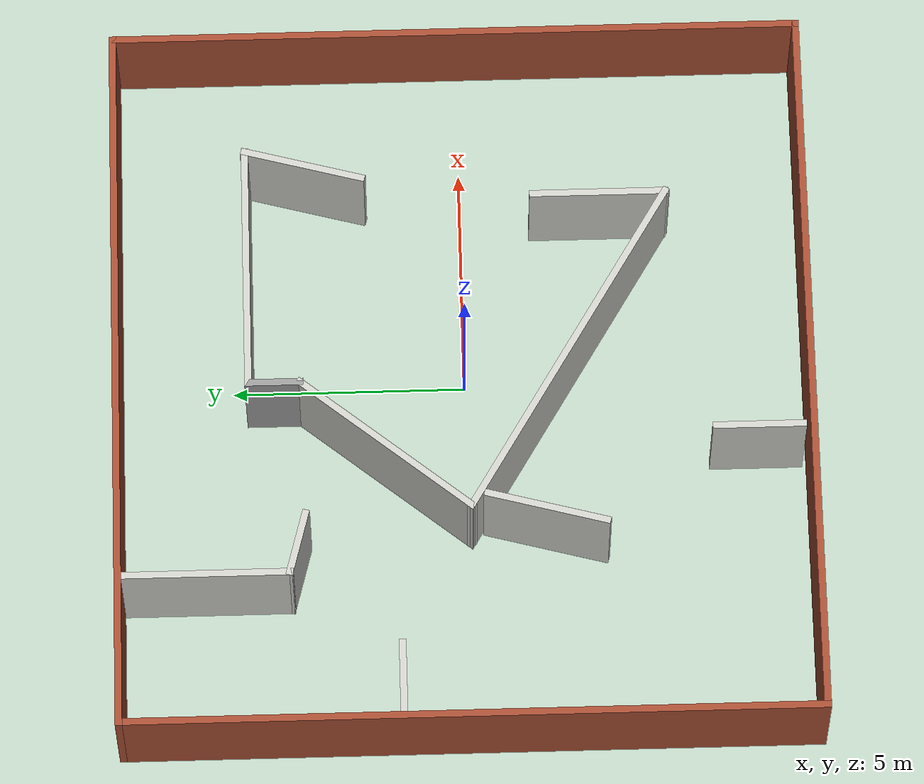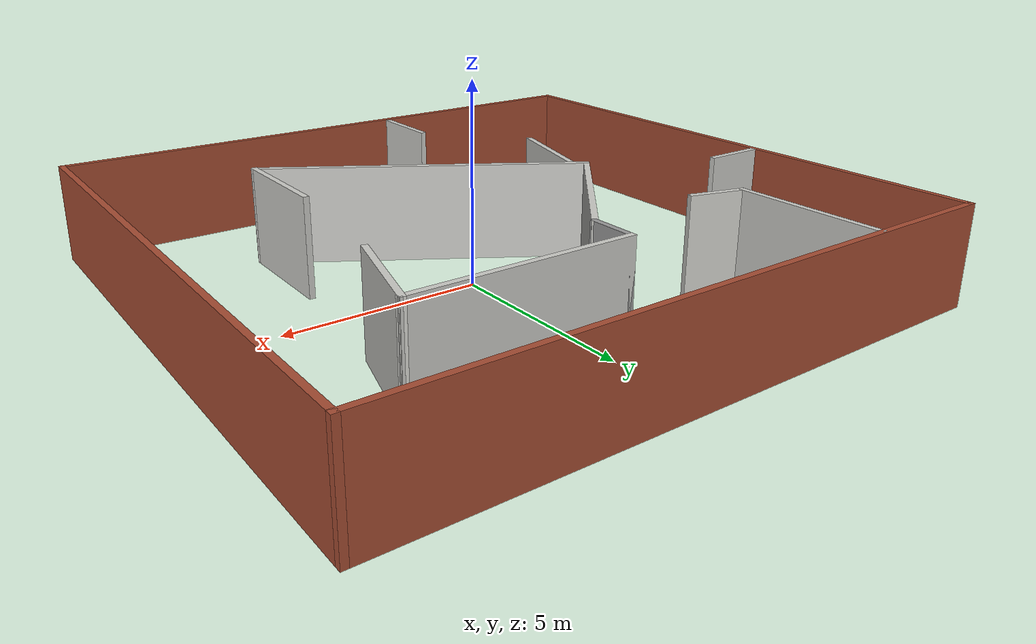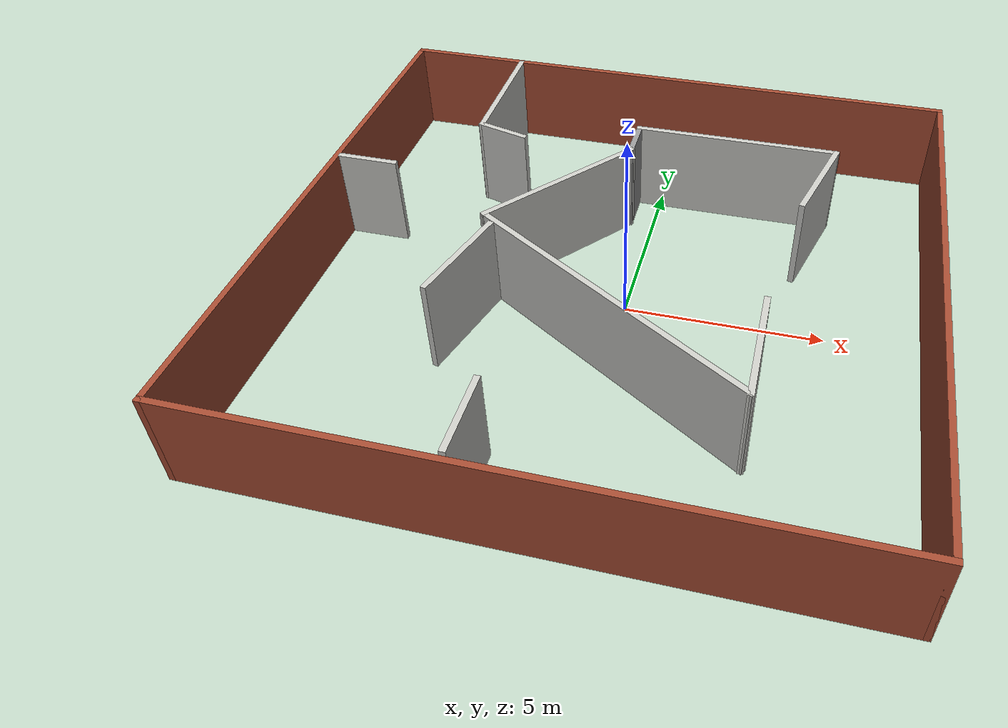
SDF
<?xml version='1.0'?>
<sdf version='1.7'>
  <model name='newwalls'>
    <pose>-0.401309 0.036613 0 0 -0 0</pose>
    <link name='Wall_10'>
      <collision name='Wall_10_Collision'>
        <geometry>
          <box>
            <size>15.75 0.15 2.5</size>
          </box>
        </geometry>
        <pose>0 0 1.25 0 -0 0</pose>
      </collision>
      <visual name='Wall_10_Visual'>
        <pose>0 0 1.25 0 -0 0</pose>
        <geometry>
          <box>
            <size>15.75 0.15 2.5</size>
          </box>
        </geometry>
        <material>
          <script>
            <uri>file://media/materials/scripts/gazebo.material</uri>
            <name>Gazebo/Bricks</name>
          </script>
          <ambient>1 1 1 1</ambient>
        </material>
        <meta>
          <layer>0</layer>
        </meta>
      </visual>
      <pose>-0 7.425 0 0 -0 3.14159</pose>
    </link>
    <link name='Wall_13'>
      <collision name='Wall_13_Collision'>
        <geometry>
          <box>
            <size>3.75 0.15 2.5</size>
          </box>
        </geometry>
        <pose>0 0 1.25 0 -0 0</pose>
      </collision>
      <visual name='Wall_13_Visual'>
        <pose>0 0 1.25 0 -0 0</pose>
        <geometry>
          <box>
            <size>3.75 0.15 2.5</size>
          </box>
        </geometry>
        <material>
          <script>
            <uri>file://media/materials/scripts/gazebo.material</uri>
            <name>Gazebo/CeilingTiled</name>
          </script>
          <ambient>1 1 1 1</ambient>
        </material>
        <meta>
          <layer>0</layer>
        </meta>
      </visual>
      <pose>-4.5564 5.58277 0 0 -0 -1.5708</pose>
    </link>
    <link name='Wall_15'>
      <collision name='Wall_15_Collision'>
        <geometry>
          <box>
            <size>1.5 0.15 2.5</size>
          </box>
        </geometry>
        <pose>0 0 1.25 0 -0 0</pose>
      </collision>
      <visual name='Wall_15_Visual'>
        <pose>0 0 1.25 0 -0 0</pose>
        <geometry>
          <box>
            <size>1.5 0.15 2.5</size>
          </box>
        </geometry>
        <material>
          <script>
            <uri>file://media/materials/scripts/gazebo.material</uri>
            <name>Gazebo/CeilingTiled</name>
          </script>
          <ambient>1 1 1 1</ambient>
        </material>
        <meta>
          <layer>0</layer>
        </meta>
      </visual>
      <pose>-3.9044 3.60807 0 0 -0 -0.261799</pose>
    </link>
    <link name='Wall_19'>
      <collision name='Wall_19_Collision'>
        <geometry>
          <box>
            <size>1.25 0.15 2.5</size>
          </box>
        </geometry>
        <pose>0 0 1.25 0 -0 0</pose>
      </collision>
      <visual name='Wall_19_Visual'>
        <pose>0 0 1.25 0 -0 0</pose>
        <geometry>
          <box>
            <size>1.25 0.15 2.5</size>
          </box>
        </geometry>
        <material>
          <script>
            <uri>file://media/materials/scripts/gazebo.material</uri>
            <name>Gazebo/Grey</name>
          </script>
          <ambient>1 1 1 1</ambient>
        </material>
        <meta>
          <layer>0</layer>
        </meta>
      </visual>
      <pose>-0.268113 4.04903 0 0 -0 1.5708</pose>
    </link>
    <link name='Wall_20'>
      <collision name='Wall_20_Collision'>
        <geometry>
          <box>
            <size>5.5 0.15 2.5</size>
          </box>
        </geometry>
        <pose>0 0 1.25 0 -0 0</pose>
      </collision>
      <visual name='Wall_20_Visual'>
        <pose>0 0 1.25 0 -0 0</pose>
        <geometry>
          <box>
            <size>5.5 0.15 2.5</size>
          </box>
        </geometry>
        <material>
          <script>
            <uri>file://media/materials/scripts/gazebo.material</uri>
            <name>Gazebo/CeilingTiled</name>
          </script>
          <ambient>1 1 1 1</ambient>
        </material>
        <meta>
          <layer>0</layer>
        </meta>
      </visual>
      <pose>2.40689 4.59903 0 0 -0 0</pose>
    </link>
    <link name='Wall_21'>
      <collision name='Wall_21_Collision'>
        <geometry>
          <box>
            <size>2.75 0.15 2.5</size>
          </box>
        </geometry>
        <pose>0 0 1.25 0 -0 0</pose>
      </collision>
      <visual name='Wall_21_Visual'>
        <pose>0 0 1.25 0 -0 0</pose>
        <geometry>
          <box>
            <size>2.75 0.15 2.5</size>
          </box>
        </geometry>
        <material>
          <script>
            <uri>file://media/materials/scripts/gazebo.material</uri>
            <name>Gazebo/CeilingTiled</name>
          </script>
          <ambient>1 1 1 1</ambient>
        </material>
        <meta>
          <layer>0</layer>
        </meta>
      </visual>
      <pose>4.74542 3.34333 0 0 -0 -1.8326</pose>
    </link>
    <link name='Wall_23'>
      <collision name='Wall_23_Collision'>
        <geometry>
          <box>
            <size>3 0.15 2.5</size>
          </box>
        </geometry>
        <pose>0 0 1.25 0 -0 0</pose>
      </collision>
      <visual name='Wall_23_Visual'>
        <pose>0 0 1.25 0 -0 0</pose>
        <geometry>
          <box>
            <size>3 0.15 2.5</size>
          </box>
        </geometry>
        <material>
          <script>
            <uri>file://media/materials/scripts/gazebo.material</uri>
            <name>Gazebo/CeilingTiled</name>
          </script>
          <ambient>1 1 1 1</ambient>
        </material>
        <meta>
          <layer>0</layer>
        </meta>
      </visual>
      <pose>3.93927 -3.02337 0 0 -0 -1.5708</pose>
    </link>
    <link name='Wall_26'>
      <collision name='Wall_26_Collision'>
        <geometry>
          <box>
            <size>4.76612 0.15 2.5</size>
          </box>
        </geometry>
        <pose>0 0 1.25 0 -0 0</pose>
      </collision>
      <visual name='Wall_26_Visual'>
        <pose>0 0 1.25 0 -0 0</pose>
        <geometry>
          <box>
            <size>4.76612 0.15 2.5</size>
          </box>
        </geometry>
        <material>
          <script>
            <uri>file://media/materials/scripts/gazebo.material</uri>
            <name>Gazebo/CeilingTiled</name>
          </script>
          <ambient>1 1 1 1</ambient>
        </material>
        <meta>
          <layer>0</layer>
        </meta>
      </visual>
      <pose>-1.71442 1.70033 0 0 -0 0.893569</pose>
    </link>
    <link name='Wall_28'>
      <collision name='Wall_28_Collision'>
        <geometry>
          <box>
            <size>8.47661 0.15 2.5</size>
          </box>
        </geometry>
        <pose>0 0 1.25 0 -0 0</pose>
      </collision>
      <visual name='Wall_28_Visual'>
        <pose>0 0 1.25 0 -0 0</pose>
        <geometry>
          <box>
            <size>8.47661 0.15 2.5</size>
          </box>
        </geometry>
        <material>
          <script>
            <uri>file://media/materials/scripts/gazebo.material</uri>
            <name>Gazebo/CeilingTiled</name>
          </script>
          <ambient>1 1 1 1</ambient>
        </material>
        <meta>
          <layer>0</layer>
        </meta>
      </visual>
      <pose>0.389267 -2.27337 0 0 -0 -0.549688</pose>
    </link>
    <link name='Wall_32'>
      <collision name='Wall_32_Collision'>
        <geometry>
          <box>
            <size>2 0.15 2.5</size>
          </box>
        </geometry>
        <pose>0 0 1.25 0 -0 0</pose>
      </collision>
      <visual name='Wall_32_Visual'>
        <pose>0 0 1.25 0 -0 0</pose>
        <geometry>
          <box>
            <size>2 0.15 2.5</size>
          </box>
        </geometry>
        <material>
          <script>
            <uri>file://media/materials/scripts/gazebo.material</uri>
            <name>Gazebo/CeilingTiled</name>
          </script>
          <ambient>1 1 1 1</ambient>
        </material>
        <meta>
          <layer>0</layer>
        </meta>
      </visual>
      <pose>-1.49879 -6.26553 0 0 -0 -1.5708</pose>
    </link>
    <link name='Wall_34'>
      <collision name='Wall_34_Collision'>
        <geometry>
          <box>
            <size>2.75 0.15 2.5</size>
          </box>
        </geometry>
        <pose>0 0 1.25 0 -0 0</pose>
      </collision>
      <visual name='Wall_34_Visual'>
        <pose>0 0 1.25 0 -0 0</pose>
        <geometry>
          <box>
            <size>2.75 0.15 2.5</size>
          </box>
        </geometry>
        <material>
          <script>
            <uri>file://media/materials/scripts/gazebo.material</uri>
            <name>Gazebo/CeilingTiled</name>
          </script>
          <ambient>1 1 1 1</ambient>
        </material>
        <meta>
          <layer>0</layer>
        </meta>
      </visual>
      <pose>-3.23446 -1.69902 0 0 -0 -1.8326</pose>
    </link>
    <link name='Wall_36'>
      <collision name='Wall_36_Collision'>
        <geometry>
          <box>
            <size>1.75 0.15 2.5</size>
          </box>
        </geometry>
        <pose>0 0 1.25 0 -0 0</pose>
      </collision>
      <visual name='Wall_36_Visual'>
        <pose>0 0 1.25 0 -0 0</pose>
        <geometry>
          <box>
            <size>1.75 0.15 2.5</size>
          </box>
        </geometry>
        <material>
          <script>
            <uri>file://media/materials/scripts/gazebo.material</uri>
            <name>Gazebo/CeilingTiled</name>
          </script>
          <ambient>1 1 1 1</ambient>
        </material>
        <meta>
          <layer>0</layer>
        </meta>
      </visual>
      <pose>-6.99521 1.44561 0 0 -0 0</pose>
    </link>
    <link name='Wall_5'>
      <collision name='Wall_5_Collision'>
        <geometry>
          <box>
            <size>15 0.15 2.5</size>
          </box>
        </geometry>
        <pose>0 0 1.25 0 -0 0</pose>
      </collision>
      <visual name='Wall_5_Visual'>
        <pose>0 0 1.25 0 -0 0</pose>
        <geometry>
          <box>
            <size>15 0.15 2.5</size>
          </box>
        </geometry>
        <material>
          <script>
            <uri>file://media/materials/scripts/gazebo.material</uri>
            <name>Gazebo/Bricks</name>
          </script>
          <ambient>1 1 1 1</ambient>
        </material>
        <meta>
          <layer>0</layer>
        </meta>
      </visual>
      <pose>-7.8 0 0 0 -0 -1.5708</pose>
    </link>
    <link name='Wall_6'>
      <collision name='Wall_6_Collision'>
        <geometry>
          <box>
            <size>15.75 0.15 2.5</size>
          </box>
        </geometry>
        <pose>0 0 1.25 0 -0 0</pose>
      </collision>
      <visual name='Wall_6_Visual'>
        <pose>0 0 1.25 0 -0 0</pose>
        <geometry>
          <box>
            <size>15.75 0.15 2.5</size>
          </box>
        </geometry>
        <material>
          <script>
            <uri>file://media/materials/scripts/gazebo.material</uri>
            <name>Gazebo/Bricks</name>
          </script>
          <ambient>1 1 1 1</ambient>
        </material>
        <meta>
          <layer>0</layer>
        </meta>
      </visual>
      <pose>-0 -7.425 0 0 -0 0</pose>
    </link>
    <link name='Wall_9'>
      <collision name='Wall_9_Collision'>
        <geometry>
          <box>
            <size>15 0.15 2.5</size>
          </box>
        </geometry>
        <pose>0 0 1.25 0 -0 0</pose>
      </collision>
      <visual name='Wall_9_Visual'>
        <pose>0 0 1.25 0 -0 0</pose>
        <geometry>
          <box>
            <size>15 0.15 2.5</size>
          </box>
        </geometry>
        <material>
          <script>
            <uri>file://media/materials/scripts/gazebo.material</uri>
            <name>Gazebo/Bricks</name>
          </script>
          <ambient>1 1 1 1</ambient>
        </material>
        <meta>
          <layer>0</layer>
        </meta>
      </visual>
      <pose>7.8 0 0 0 -0 1.5708</pose>
    </link>
    <static>1</static>
  </model>
</sdf>
